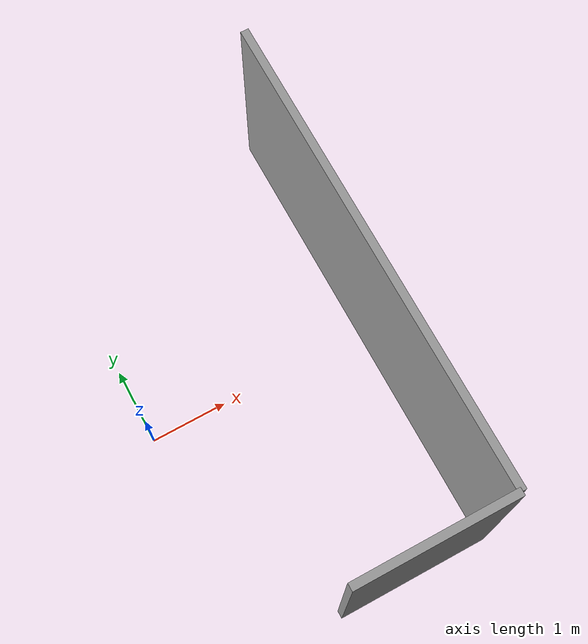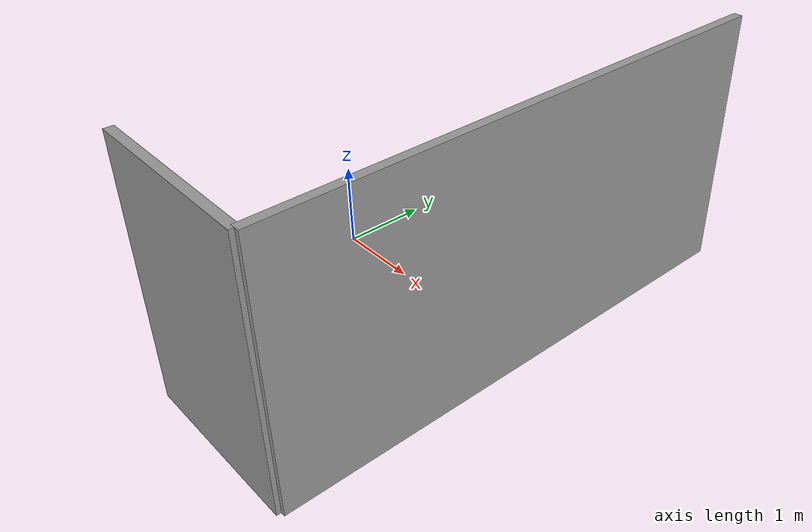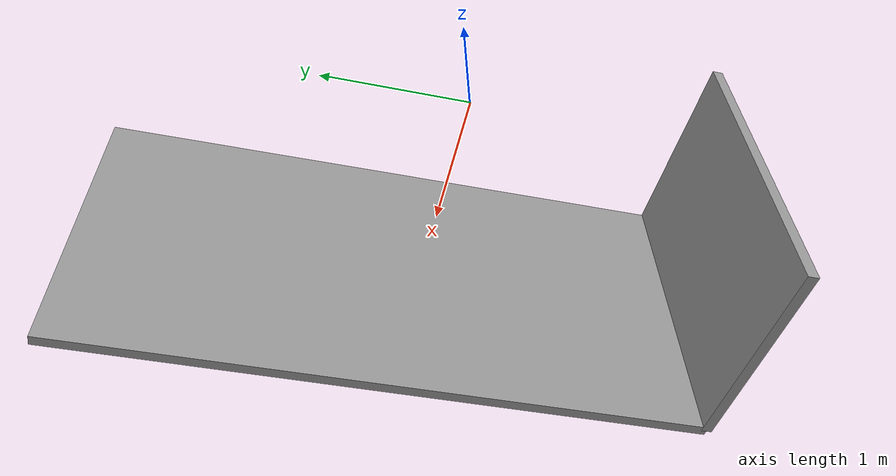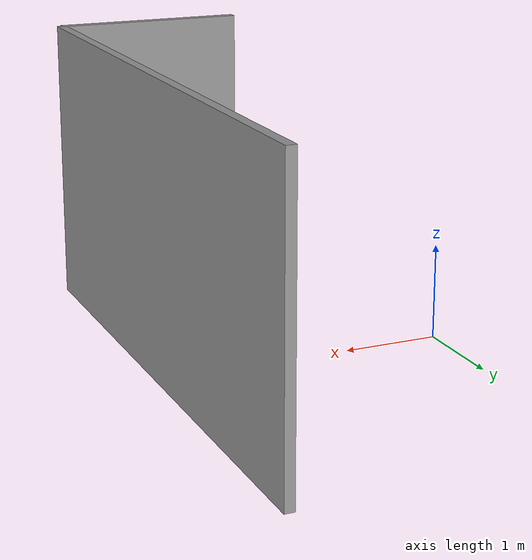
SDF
<?xml version='1.0'?>
<sdf version='1.6'>
  <model name='two_walls'>
    <pose frame=''>0 0 0 0 0 0</pose>
    <link name='Wall_0'>
      <collision name='Wall_0_Collision'>
        <geometry>
          <box>
            <size>2 0.1 3</size>
          </box>
        </geometry>
        <pose frame=''>0 0 1.5 0 -0 0</pose>
      </collision>
      <visual name='Wall_0_Visual'>
        <pose frame=''>0 0 1.5 0 -0 0</pose>
        <geometry>
          <box>
            <size>2 0.1 3</size>
          </box>
        </geometry>
        <material>
          <script>
            <uri>file://media/materials/scripts/gazebo.material</uri>
            <name>Gazebo/Grey</name>
          </script>
          <ambient>1 1 1 1</ambient>
        </material>
        <meta>
          <layer>0</layer>
        </meta>
      </visual>
      <pose frame=''>2 -3 0 0 0 3.14159</pose>
    </link>
    <link name='Wall_1'>
      <collision name='Wall_1_Collision'>
        <geometry>
          <box>
            <size>6 0.1 3</size>
          </box>
        </geometry>
        <pose frame=''>0 0 1.5 0 0 0</pose>
      </collision>
      <visual name='Wall_1_Visual'>
        <pose frame=''>0 0 1.5 0 0 0</pose>
        <geometry>
          <box>
            <size>6 0.1 3</size>
          </box>
        </geometry>
        <material>
          <script>
            <uri>file://media/materials/scripts/gazebo.material</uri>
            <name>Gazebo/Grey</name>
          </script>
          <ambient>1 1 1 1</ambient>
        </material>
        <meta>
          <layer>0</layer>
        </meta>
      </visual>
      <pose frame=''>3 0 0 0 0 -1.5708</pose>
    </link>
    <static>1</static>
  </model>
</sdf>
